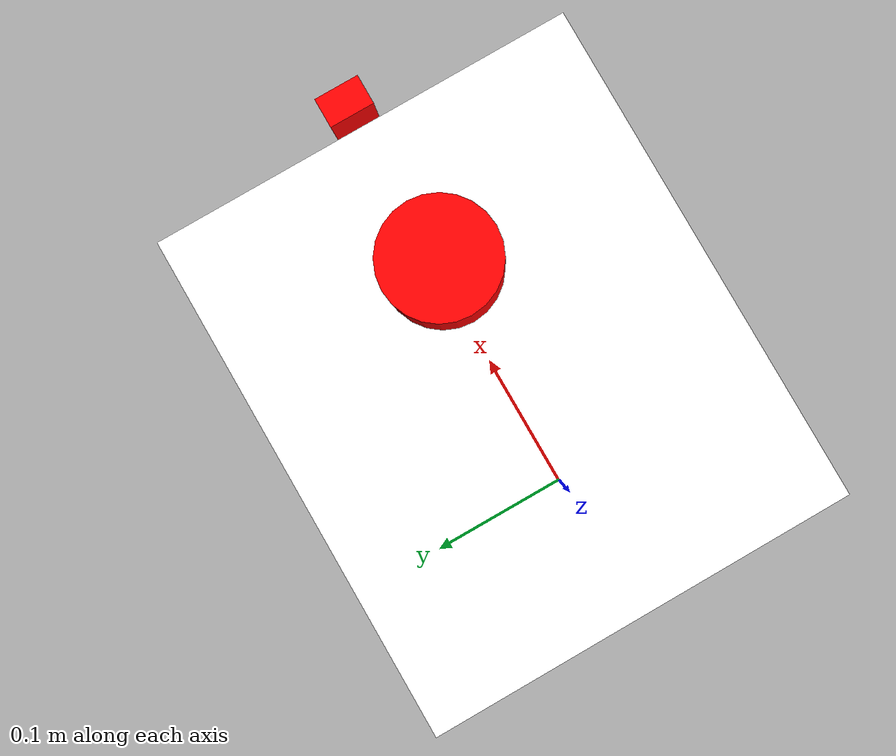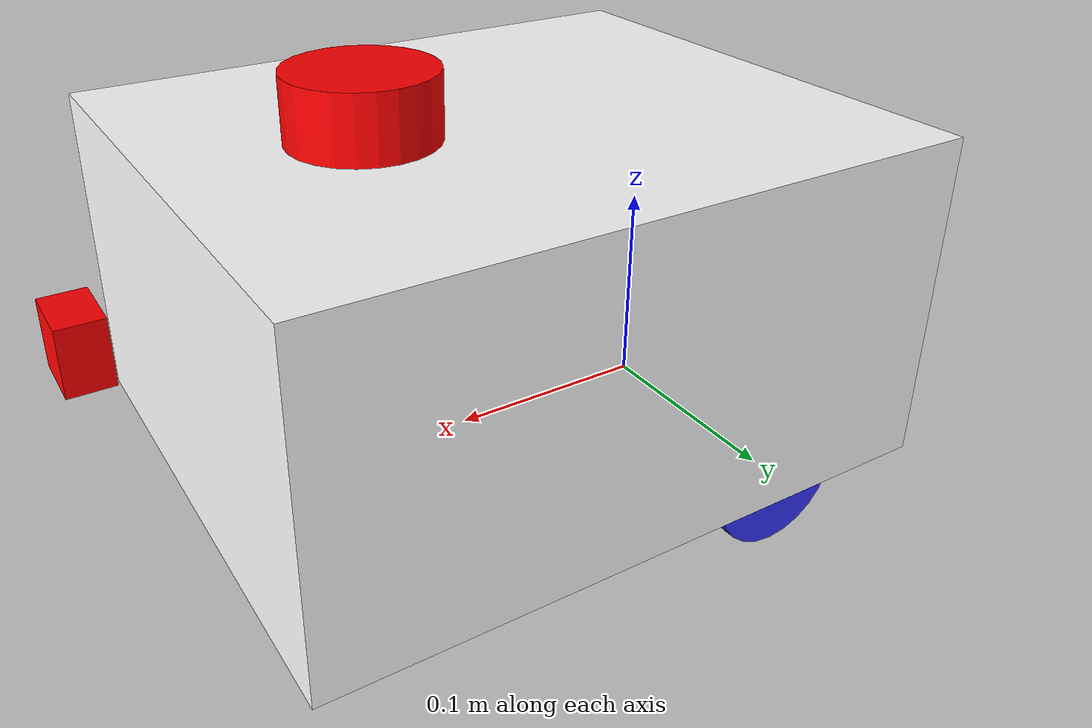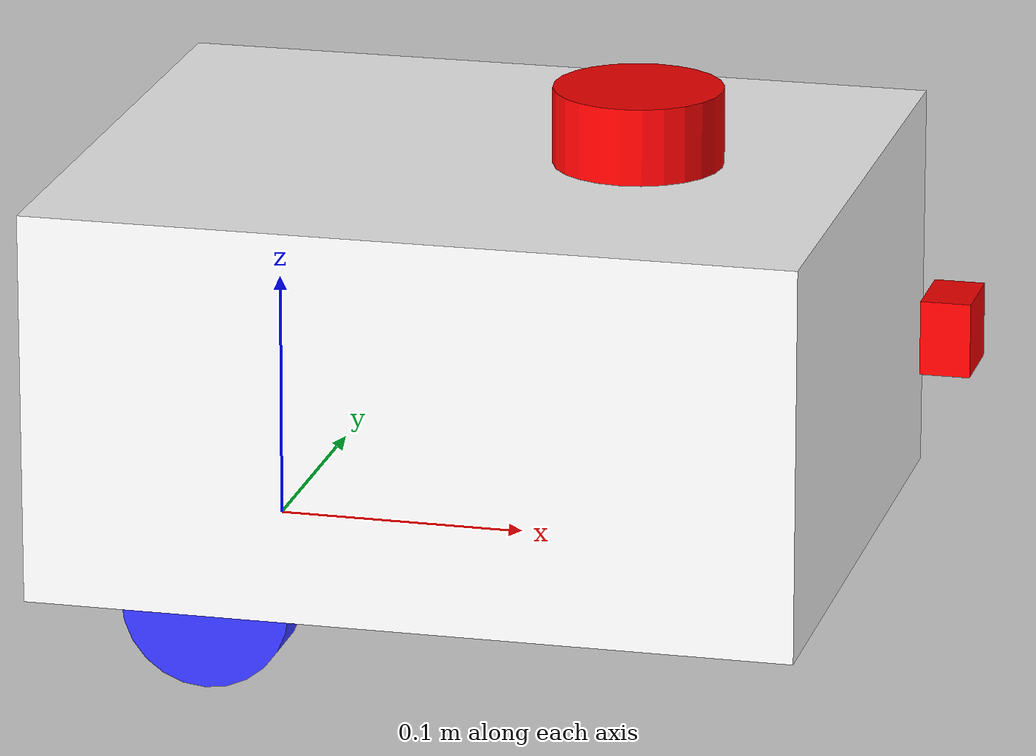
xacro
<?xml version="1.0"?>
<robot xmlns:xacro="http://www.ros.org/wiki/xacro"  name="robot">
    <xacro:arg name="use_ros2_control" default="true"/>
    <xacro:arg name="sim_mode" default="false"/>

    <xacro:property name="PI" value="3.14159265359" />
    <xacro:include filename="robot_core.xacro" />
    <xacro:include filename="lidar.xacro"/>
    <xacro:include filename="camera.xacro"/>

    <xacro:if value="$(arg use_ros2_control)">
        <xacro:include filename="ros2_control.xacro" />
    </xacro:if>
    <xacro:unless value="$(arg use_ros2_control)">
        <xacro:include filename="gazebo_control.xacro" />
    </xacro:unless>

</robot>

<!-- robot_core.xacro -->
<robot xmlns:xacro="http://www.ros.org/wiki/xacro" >

    <xacro:include filename="inertial_macros.xacro"/>

    <material name="white">
        <color rgba="1 1 1 1"/>
    </material>

    <material name="orange">
        <color rgba="1 0.3 0.1 1"/>
    </material>

    <material name="blue">
        <color rgba="0.2 0.2 1 1"/>
    </material>

    <material name="red">
        <color rgba="1 0 0 1"/>
    </material>

    <material name="black">
        <color rgba="0 0 0 1"/>
    </material>

    <!-- PROPERTY -->
    <xacro:property name="longueur_robot" value="0.308" />
    <xacro:property name="largeur_robot" value="0.258" />
    <xacro:property name="hauteur_robot" value="0.158" />
    <xacro:property name="distance_cir" value="0.07" />
    <xacro:property name="masse_robot" value="1" />

    <xacro:property name="distance_cir_roue" value="${(largeur_robot/2)-longueur_roue}" />
    <xacro:property name="longueur_roue" value="0.025" />
    <xacro:property name="diametre_roue" value="0.068" />
    <xacro:property name="masse_roue" value="0.1" />

    <xacro:property name="distance_caster" value="${longueur_robot-0.066}" />
    <xacro:property name="diametre_caster" value="${diametre_roue}" />
    <xacro:property name="masse_caster" value="0.1" />

    <!-- BASE LINK -->
    <link name="base_link"></link>

    <!-- BASE LINK FOOTPRINT -->
    <joint name="base_footprint_joint" type="fixed">
        <parent link="base_link"/>
        <child link="base_footprint"/>
        <origin xyz="0 0 -${diametre_roue/2}" rpy="0 0 0"/>
    </joint>

    <link name="base_footprint">
    </link>

    <!-- CHASSIS -->
    <joint name="chassis_joint" type="fixed">
        <parent link="base_link"/>
        <child link="chassis"/>
        <origin xyz="-${distance_cir} 0 0"/>
    </joint>

    <link name="chassis">
        <visual>
            <origin xyz="${longueur_robot/2} 0 ${hauteur_robot/2}" rpy="0 0 0"/>
            <geometry>
                <box size="${longueur_robot} ${largeur_robot} ${hauteur_robot}"/>
            </geometry>
            <material name="white"/>
        </visual>

        <collision>
            <origin xyz="${longueur_robot/2} 0 ${hauteur_robot/2}" rpy="0 0 0"/>
            <geometry>
                <box size="${longueur_robot} ${largeur_robot} ${hauteur_robot}"/>
            </geometry>
        </collision>

        <xacro:inertial_box mass="${masse_robot}" x="${longueur_robot}" y="${largeur_robot}" z="${hauteur_robot}">
            <origin xyz="${longueur_robot/2} 0 ${hauteur_robot/2}" rpy="0 0 0"/>
        </xacro:inertial_box>
    </link>

    <gazebo reference="chassis">
        <material>Gazebo/White</material>
    </gazebo>

    <!-- LEFT WHEEL -->
    <joint name="left_wheel_joint" type="continuous">
        <parent link="base_link"/>
        <child link="left_wheel"/>
        <origin xyz="0 ${distance_cir_roue} 0" rpy="-${pi/2} 0 0"/>
        <axis xyz="0 0 1"/>
    </joint>

    <link name="left_wheel">
        <visual>
            <geometry>
                <cylinder length="${longueur_roue}" radius="${diametre_roue/2}" />
            </geometry>
            <material name="blue"/>
        </visual>

        <collision>
            <geometry>
                <cylinder length="${longueur_roue}" radius="${diametre_roue/2}" />
            </geometry>
        </collision>

        <xacro:inertial_cylinder mass="${masse_roue}" length="${longueur_roue}" radius="${diametre_roue/2}">
            <origin xyz="0 0 0" rpy="0 0 0"/>
        </xacro:inertial_cylinder>
    </link>

    <gazebo reference="left_wheel">
        <material>Gazebo/Blue</material>
    </gazebo>

    <!-- RIGHT WHEEL -->
    <joint name="right_wheel_joint" type="continuous">
        <parent link="base_link"/>
        <child link="right_wheel"/>
        <origin xyz="0 -${distance_cir_roue} 0" rpy="${pi/2} 0 0"/>
        <axis xyz="0 0 -1"/>
    </joint>

    <link name="right_wheel">
        <visual>
            <geometry>
                <cylinder length="${longueur_roue}" radius="${diametre_roue/2}" />
            </geometry>
            <material name="blue"/>
        </visual>

        <collision>
            <geometry>
                <cylinder length="${longueur_roue}" radius="${diametre_roue/2}" />
            </geometry>
        </collision>

        <xacro:inertial_cylinder mass="${masse_roue}" length="${longueur_roue}" radius="${diametre_roue/2}">
            <origin xyz="0 0 0" rpy="0 0 0"/>
        </xacro:inertial_cylinder>
    </link>

    <gazebo reference="right_wheel">
        <material>Gazebo/Blue</material>
    </gazebo>

    <!-- CASTER WHEEL -->
    <joint name="caster_wheel_joint" type="fixed">
        <parent link="chassis"/>
        <child link="caster_wheel"/>
        <origin xyz="${distance_caster} 0 0" rpy="0 0 0"/>
    </joint>

    <link name="caster_wheel">
        <visual>
            <geometry>
                <sphere radius="${diametre_caster/2}" />
            </geometry>
            <material name="black"/>
        </visual>

        <collision>
            <geometry>
                <sphere radius="${diametre_caster/2}" />
            </geometry>
        </collision>

        <xacro:inertial_sphere mass="${masse_caster}" radius="${diametre_caster/2}">
            <origin xyz="0 0 0" rpy="0 0 0"/>
        </xacro:inertial_sphere>
    </link>

    <gazebo reference="caster_wheel">
        <material>Gazebo/Black</material>
        <mu1 value="0.001"/>
        <mu2 value="0.001"/>
    </gazebo>

</robot>

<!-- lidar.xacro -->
<robot xmlns:xacro="http://www.ros.org/wiki/xacro" >

    <xacro:property name="distance_lidar" value="0.217" />
    <xacro:property name="diametre_lidar" value="0.068" />
    <xacro:property name="longueur_lidar" value="0.04" />
    <xacro:property name="hauteur_lidar" value="0.169" />
    <xacro:property name="masse_lidar" value="0.1" />

    <joint name="laser_joint" type="fixed">
        <parent link="chassis"/>
        <child link="laser_frame"/>
        <origin xyz="${distance_lidar} 0 ${hauteur_lidar}" rpy="0 0 0"/>
    </joint>

    <link name="laser_frame">
        <visual>
            <geometry>
                <cylinder radius="${diametre_lidar/2}" length="${longueur_lidar}"/>
            </geometry>
            <material name="red"/>
        </visual>
        <collision>
            <geometry>
                <cylinder radius="${diametre_lidar/2}" length="${longueur_lidar}"/>
            </geometry>
        </collision>
        <xacro:inertial_cylinder mass="${masse_lidar}" length="${longueur_lidar}" radius="${diametre_lidar/2}">
            <origin xyz="0 0 0" rpy="0 0 0"/>
        </xacro:inertial_cylinder>
    </link>

    <gazebo reference="laser_frame">
        <material>Gazebo/Red</material>

        <sensor name="laser" type="ray">
            <pose> 0 0 0 0 0 0 </pose>
            <visualize>false</visualize>  <!-- true if I want to see the blue lines -->
            <update_rate>10</update_rate>
            <ray>
                <scan>
                    <horizontal>
                        <samples>360</samples>
                        <min_angle>-3.14</min_angle>
                        <max_angle>3.14</max_angle>
                    </horizontal>
                </scan>
                <range>
                    <min>0.3</min>
                    <max>12</max>
                </range>
            </ray>
            <plugin name="laser_controller" filename="libgazebo_ros_ray_sensor.so">
                <ros>
                    <argument>~/out:=scan</argument>
                </ros>
                <output_type>sensor_msgs/LaserScan</output_type>
                <frame_name>laser_frame</frame_name>
            </plugin>
        </sensor>
    </gazebo>

</robot>

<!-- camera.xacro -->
<robot xmlns:xacro="http://www.ros.org/wiki/xacro" >

    <xacro:property name="longueur_camera" value="0.020" />
    <xacro:property name="largeur_camera" value="0.03" />
    <xacro:property name="hauteur_camera" value="0.03" />
    <xacro:property name="hauteur_base_camera" value="0.0985" />
    <xacro:property name="masse_camera" value="0.05" />
    <xacro:property name="distance_camera" value="${0.190+(longueur_robot/2)}" />

    <joint name="camera_joint" type="fixed">
        <parent link="chassis"/>
        <child link="camera_link"/>
        <origin xyz="${distance_camera} 0 ${hauteur_base_camera}" rpy="0 0 0"/>
    </joint>

    <link name="camera_link">
        <visual>
            <geometry>
                <box size="${longueur_camera} ${largeur_camera} ${hauteur_camera}"/>
            </geometry>
            <material name="red"/>
        </visual>
        <collision>
            <geometry>
                <box size="${longueur_camera} ${largeur_camera} ${hauteur_camera}"/>
            </geometry>
        </collision>
        <xacro:inertial_box mass="${masse_camera}" x="${longueur_camera}" y="${largeur_camera}" z="${hauteur_camera}">
            <origin xyz="0 0 0" rpy="0 0 0"/>
        </xacro:inertial_box>
    </link>

    <joint name="camera_optical_joint" type="fixed">
        <origin xyz="0 0 0" rpy="${-pi/2} 0 ${-pi/2}" />
        <parent link="camera_link" />
        <child link="camera_link_optical" />
    </joint>

    <link name="camera_link_optical"></link>

    <gazebo reference="camera_link">
        <material>Gazebo/Red</material>

        <sensor name="camera" type="camera">
            <pose> 0 0 0 0 0 0 </pose>
            <visualize>true</visualize>
            <update_rate>10</update_rate>
            <camera>
                <horizontal_fov>1.089</horizontal_fov>
                <image>
                    <format>R8G8B8</format>
                    <width>640</width>
                    <height>480</height>
                </image>
                <clip>
                    <near>0.05</near>
                    <far>8.0</far>
                </clip>
            </camera>
            <plugin name="camera_controller" filename="libgazebo_ros_camera.so">
                <frame_name>camera_link_optical</frame_name>
            </plugin>
        </sensor>

    </gazebo>

</robot>
